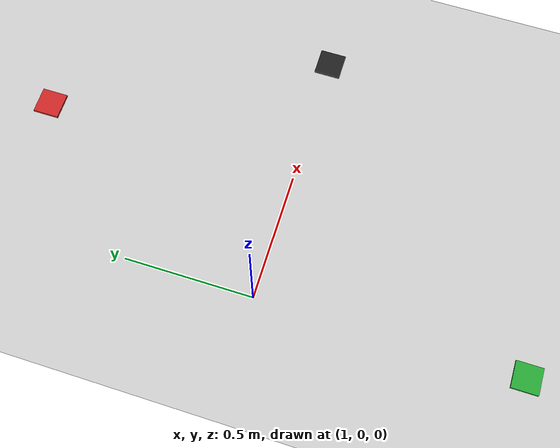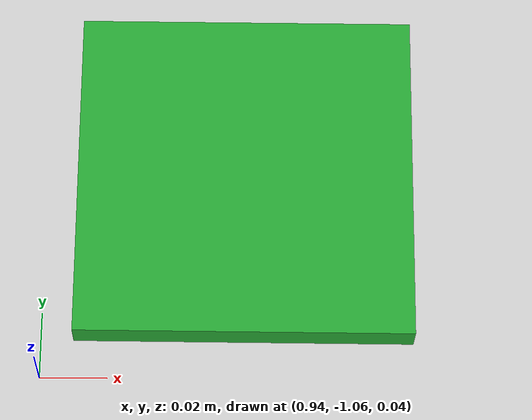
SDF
<?xml version="1.0" ?>
<sdf version="1.6">
  <world name="docking_world">

    <!-- Global lighting -->
    <include>
      <uri>model://sun</uri>
    </include>

    <!-- Ground plane -->
    <include>
      <uri>model://ground_plane</uri>
    </include>

    <!-- ArUco markers as simple boxes with visual patterns -->
    <model name="aruco_marker_0">
      <pose>2 0 0.05 0 0 0</pose>
      <static>true</static>
      <link name="link">
        <visual name="visual">
          <geometry>
            <box>
              <size>0.1 0.1 0.01</size>
            </box>
          </geometry>
          <material>
            <script>
              <name>Gazebo/Black</name>
            </script>
          </material>
        </visual>
        <collision name="collision">
          <geometry>
            <box>
              <size>0.1 0.1 0.01</size>
            </box>
          </geometry>
        </collision>
      </link>
    </model>

    <model name="aruco_marker_1">
      <pose>1.5 1.0 0.05 0 0 1.57</pose>
      <static>true</static>
      <link name="link">
        <visual name="visual">
          <geometry>
            <box>
              <size>0.1 0.1 0.01</size>
            </box>
          </geometry>
          <material>
            <script>
              <name>Gazebo/Red</name>
            </script>
          </material>
        </visual>
        <collision name="collision">
          <geometry>
            <box>
              <size>0.1 0.1 0.01</size>
            </box>
          </geometry>
        </collision>
      </link>
    </model>

    <model name="aruco_marker_2">
      <pose>1.0 -1.0 0.05 0 0 -1.57</pose>
      <static>true</static>
      <link name="link">
        <visual name="visual">
          <geometry>
            <box>
              <size>0.1 0.1 0.01</size>
            </box>
          </geometry>
          <material>
            <script>
              <name>Gazebo/Green</name>
            </script>
          </material>
        </visual>
        <collision name="collision">
          <geometry>
            <box>
              <size>0.1 0.1 0.01</size>
            </box>
          </geometry>
        </collision>
      </link>
    </model>

  </world>
</sdf>
